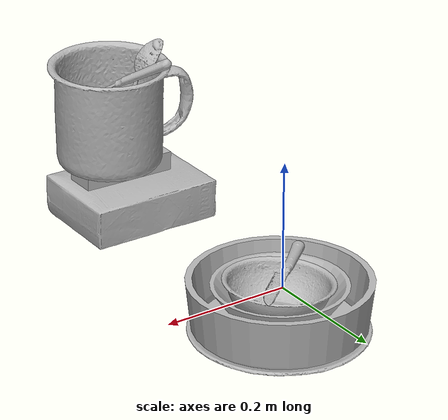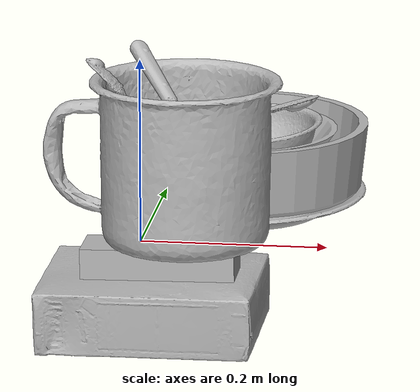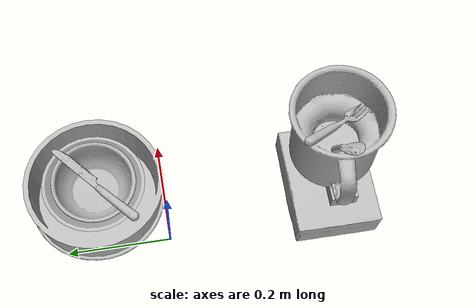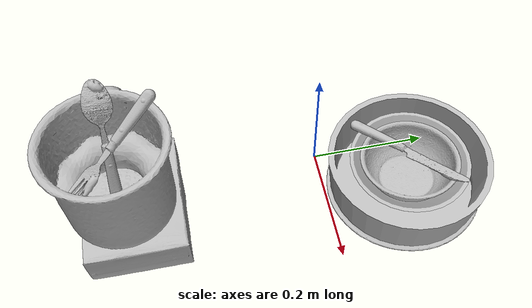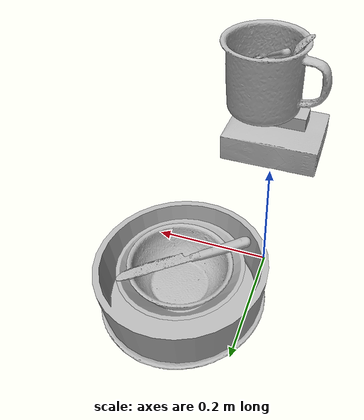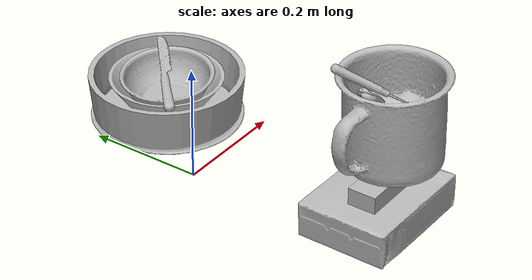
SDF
<?xml version="1.0" ?>
<sdf version="1.4">

  <world name="default">

    <light name="light1" type="point">

      <pose>0 0 1 0 0 0</pose>

      <diffuse>3 3 3 1</diffuse>

      <specular>3 3 3 1</specular>

    </light>

    <light name="light2" type="point">

      <pose>0 0.5 2 0 0 0</pose>

      <diffuse>1 1 1 1</diffuse>

      <specular>1 1 1 1</specular>

    </light>

    <light name="light3" type="point">

      <pose>0 0.5 2 0 0 0</pose>

      <diffuse>3 3 3 1</diffuse>

      <specular>3 3 3 1</specular>

    </light>

    <scene>

      <ambient>0.7 0.7 0.7</ambient>

    </scene>

    <model name="plate1">

      <link name="link_plate1">

        <collision name="default">

          <geometry>

            <mesh>

              <uri>model://plate/collision_meshes/collision.obj</uri>

              <scale>1.0 1.0 1.0</scale>

            </mesh>

          </geometry>

          <surface>

            <friction>

              <ode>

                <mu>0.5</mu>

                <mu2>0.5</mu2>

              </ode>

            </friction>

          </surface>

        </collision>

        <visual name="default">

          <geometry>

            <mesh>

              <uri>model://plate/visual_meshes/visual.dae</uri>

              <scale>1.0 1.0 1.0</scale>

            </mesh>

          </geometry>

        </visual>

        <inertial>

          <mass>0.2627958059310913</mass>

          <pose>-0.0006044646725058556 0.00027825895813293755 -0.0010561998933553696 0.0022187866930069794 -0.0032254842153956703 0.4526099982878722</pose>

          <inertia>

            <ixx>0.0012293643</ixx>

            <iyy>0.0012176059</iyy>

            <izz>0.0024044532</izz>

            <ixy>0</ixy>

            <ixz>0</ixz>

            <iyz>0</iyz>

          </inertia>

        </inertial>

      </link>

      <pose>0.09994655847549438 0.12999475002288818 0.013737192377448082 -1.8964748812831525e-05 -5.37050631164338e-05 -0.00029494472107933757</pose>

    </model>

    <model name="plate2">

      <link name="link_plate2">

        <collision name="default">

          <geometry>

            <mesh>

              <uri>model://pan_tefal/collision_meshes/collision.obj</uri>

              <scale>1.0 1.0 1.0</scale>

            </mesh>

          </geometry>

          <surface>

            <friction>

              <ode>

                <mu>0.5</mu>

                <mu2>0.5</mu2>

              </ode>

            </friction>

          </surface>

        </collision>

        <visual name="default">

          <geometry>

            <mesh>

              <uri>model://pan_tefal/visual_meshes/visual.dae</uri>

              <scale>1.0 1.0 1.0</scale>

            </mesh>

          </geometry>

        </visual>

        <inertial>

          <mass>1.5012701749801636</mass>

          <pose>-0.00018001999706029892 3.279017983004451e-05 -0.00851493701338768 0.0008190300793188327 -0.0003301349064117064 -0.3318640955526003</pose>

          <inertia>

            <ixx>0.010363197</ixx>

            <iyy>0.010430007</iyy>

            <izz>0.019076647</izz>

            <ixy>0</ixy>

            <ixz>0</ixz>

            <iyz>0</iyz>

          </inertia>

        </inertial>

      </link>

      <pose>0.09982559829950333 0.13003931939601898 0.06393395364284515 0.0012797042044948705 -0.0019563367806306386 0.0008728082526264354</pose>

    </model>

    <model name="bowl1">

      <link name="link_bowl1">

        <collision name="default">

          <geometry>

            <mesh>

              <uri>model://bowl_a/collision_meshes/collision.obj</uri>

              <scale>1.0 1.0 1.0</scale>

            </mesh>

          </geometry>

          <surface>

            <friction>

              <ode>

                <mu>0.5</mu>

                <mu2>0.5</mu2>

              </ode>

            </friction>

          </surface>

        </collision>

        <visual name="default">

          <geometry>

            <mesh>

              <uri>model://bowl_a/visual_meshes/visual.dae</uri>

              <scale>1.0 1.0 1.0</scale>

            </mesh>

          </geometry>

        </visual>

        <inertial>

          <mass>0.25230005383491516</mass>

          <pose>0.0002786753175314516 4.731153603643179e-05 -0.001376529224216938 -0.000980537182568925 -0.0010938202432478224 -0.19123453155183487</pose>

          <inertia>

            <ixx>0.00071831</ixx>

            <iyy>0.0007227198</iyy>

            <izz>0.0012775414</izz>

            <ixy>0</ixy>

            <ixz>0</ixz>

            <iyz>0</iyz>

          </inertia>

        </inertial>

      </link>

      <pose>0.10060806572437286 0.1310744732618332 0.0640677809715271 0.004139186369698193 -0.002763075250057129 -0.006373881404869026</pose>

    </model>

    <model name="bowl2">

      <link name="link_bowl2">

        <collision name="default">

          <geometry>

            <mesh>

              <uri>model://bowl/collision_meshes/collision.obj</uri>

              <scale>1.0 1.0 1.0</scale>

            </mesh>

          </geometry>

          <surface>

            <friction>

              <ode>

                <mu>0.5</mu>

                <mu2>0.5</mu2>

              </ode>

            </friction>

          </surface>

        </collision>

        <visual name="default">

          <geometry>

            <mesh>

              <uri>model://bowl/visual_meshes/visual.dae</uri>

              <scale>1.0 1.0 1.0</scale>

            </mesh>

          </geometry>

        </visual>

        <inertial>

          <mass>0.09131127595901489</mass>

          <pose>0.00020444947585929185 -0.0010302107548341155 -0.0008042654953896999 -0.01576413996306862 0.014546728377416086 0.7140363947853973</pose>

          <inertia>

            <ixx>0.00020974927</ixx>

            <iyy>0.00020506265</iyy>

            <izz>0.00035287044</izz>

            <ixy>0</ixy>

            <ixz>0</ixz>

            <iyz>0</iyz>

          </inertia>

        </inertial>

      </link>

      <pose>0.10297710448503494 0.13036854565143585 0.0732540488243103 0.020873271166305822 -0.07380807851850675 -0.03476412837430486</pose>

    </model>

    <model name="silverware1">

      <link name="link_silverware1">

        <collision name="default">

          <geometry>

            <mesh>

              <uri>model://knife/collision_meshes/collision.obj</uri>

              <scale>1.0 1.0 1.0</scale>

            </mesh>

          </geometry>

          <surface>

            <friction>

              <ode>

                <mu>0.5</mu>

                <mu2>0.5</mu2>

              </ode>

            </friction>

          </surface>

        </collision>

        <visual name="default">

          <geometry>

            <mesh>

              <uri>model://knife/visual_meshes/visual.dae</uri>

              <scale>1.0 1.0 1.0</scale>

            </mesh>

          </geometry>

        </visual>

        <inertial>

          <mass>0.033491987735033035</mass>

          <pose>-0.023785259574651718 0.00152751209679991 5.062024501967244e-05 0.07305195921562309 0.017248415702697233 -0.007409822782391368</pose>

          <inertia>

            <ixx>9.5063825e-07</ixx>

            <iyy>0.00012867076</iyy>

            <izz>0.00012897696</izz>

            <ixy>0</ixy>

            <ixz>0</ixz>

            <iyz>0</iyz>

          </inertia>

        </inertial>

      </link>

      <pose>0.09315893799066544 0.1263696849346161 0.10643904656171799 -0.14179147003510656 -0.07044320274756541 0.7263532938954272</pose>

    </model>

    <model name="box1">

      <link name="link_box1">

        <collision name="default">

          <geometry>

            <mesh>

              <uri>model://cracker_box/collision_meshes/collision.obj</uri>

              <scale>1.0 1.0 1.0</scale>

            </mesh>

          </geometry>

          <surface>

            <friction>

              <ode>

                <mu>0.5</mu>

                <mu2>0.5</mu2>

              </ode>

            </friction>

          </surface>

        </collision>

        <visual name="default">

          <geometry>

            <mesh>

              <uri>model://cracker_box/visual_meshes/visual.dae</uri>

              <scale>1.0 1.0 1.0</scale>

            </mesh>

          </geometry>

        </visual>

        <inertial>

          <mass>3.401942253112793</mass>

          <pose>0.0009464150061830878 0.00025434247800149024 -0.001702953246422112 -0.00031620765582640923 -0.011106486806186075 0.0025467954673401043</pose>

          <inertia>

            <ixx>0.008653021</ixx>

            <iyy>0.014287839</iyy>

            <izz>0.020390058</izz>

            <ixy>0</ixy>

            <ixz>0</ixz>

            <iyz>0</iyz>

          </inertia>

        </inertial>

      </link>

      <pose>0.059562455862760544 -0.32000622153282166 0.035532813519239426 3.137602525628845 -0.01637159674240883 -0.00037850492653239236</pose>

    </model>

    <model name="box2">

      <link name="link_box2">

        <collision name="default">

          <geometry>

            <mesh>

              <uri>model://jenga/collision_meshes/collision.obj</uri>

              <scale>1.0 1.0 1.0</scale>

            </mesh>

          </geometry>

          <surface>

            <friction>

              <ode>

                <mu>0.5</mu>

                <mu2>0.5</mu2>

              </ode>

            </friction>

          </surface>

        </collision>

        <visual name="default">

          <geometry>

            <mesh>

              <uri>model://jenga/visual_meshes/visual.dae</uri>

              <scale>1.0 1.0 1.0</scale>

            </mesh>

          </geometry>

        </visual>

        <inertial>

          <mass>0.15917322039604187</mass>

          <pose>-2.502856091268768e-07 -0.00010250010382151231 -4.0923405322246253e-05 0.0 -7.34215461761844e-07 0.0</pose>

          <inertia>

            <ixx>4.4047094e-05</ixx>

            <iyy>0.0002984619</iyy>

            <izz>0.00031863348</izz>

            <ixy>0</ixy>

            <ixz>0</ixz>

            <iyz>0</iyz>

          </inertia>

        </inertial>

      </link>

      <pose>0.06848328560590744 -0.332438588142395 0.08718373626470566 -0.0023323528486801286 -0.017177915611826498 -0.000746988789350429</pose>

    </model>

    <model name="cup1">

      <link name="link_cup1">

        <collision name="default">

          <geometry>

            <mesh>

              <uri>model://mug/collision_meshes/collision.obj</uri>

              <scale>2.0 2.0 2.0</scale>

            </mesh>

          </geometry>

          <surface>

            <friction>

              <ode>

                <mu>0.5</mu>

                <mu2>0.5</mu2>

              </ode>

            </friction>

          </surface>

        </collision>

        <visual name="default">

          <geometry>

            <mesh>

              <uri>model://mug/visual_meshes/visual.dae</uri>

              <scale>2.0 2.0 2.0</scale>

            </mesh>

          </geometry>

        </visual>

        <inertial>

          <mass>1.8939067125320435</mass>

          <pose>0.019143342971801758 0.0016286505851894617 -0.02189466543495655 -0.12983139039190478 0.08737723243087561 0.05507286357129759</pose>

          <inertia>

            <ixx>0.0075250226</ixx>

            <iyy>0.008405008</iyy>

            <izz>0.009720505</izz>

            <ixy>0</ixy>

            <ixz>0</ixz>

            <iyz>0</iyz>

          </inertia>

        </inertial>

      </link>

      <pose>0.06896759569644928 -0.323712557554245 0.18374912440776825 -0.020811560129200525 -0.0017600770479020734 -0.11905942564659182</pose>

    </model>

    <model name="silverware2">

      <link name="link_silverware2">

        <collision name="default">

          <geometry>

            <mesh>

              <uri>model://fork/collision_meshes/collision.obj</uri>

              <scale>1.0 1.0 1.0</scale>

            </mesh>

          </geometry>

          <surface>

            <friction>

              <ode>

                <mu>0.5</mu>

                <mu2>0.5</mu2>

              </ode>

            </friction>

          </surface>

        </collision>

        <visual name="default">

          <geometry>

            <mesh>

              <uri>model://fork/visual_meshes/visual.dae</uri>

              <scale>1.0 1.0 1.0</scale>

            </mesh>

          </geometry>

        </visual>

        <inertial>

          <mass>0.01107261423021555</mass>

          <pose>-0.02957005240023136 0.00046588238910771906 0.0003218861820641905 -0.01355183639158028 -0.010977839693189282 0.014453902572364752</pose>

          <inertia>

            <ixx>3.8815773e-07</ixx>

            <iyy>2.8907412e-05</iyy>

            <izz>2.9081024e-05</izz>

            <ixy>0</ixy>

            <ixz>0</ixz>

            <iyz>0</iyz>

          </inertia>

        </inertial>

      </link>

      <pose>0.08156593888998032 -0.31661364436149597 0.2319439947605133 -0.1218420794007134 0.5130799182263286 -0.9704719731863752</pose>

    </model>

    <model name="silverware3">

      <link name="link_silverware3">

        <collision name="default">

          <geometry>

            <mesh>

              <uri>model://spoon/collision_meshes/collision.obj</uri>

              <scale>1.0 1.0 1.0</scale>

            </mesh>

          </geometry>

          <surface>

            <friction>

              <ode>

                <mu>0.5</mu>

                <mu2>0.5</mu2>

              </ode>

            </friction>

          </surface>

        </collision>

        <visual name="default">

          <geometry>

            <mesh>

              <uri>model://spoon/visual_meshes/visual.dae</uri>

              <scale>1.0 1.0 1.0</scale>

            </mesh>

          </geometry>

        </visual>

        <inertial>

          <mass>0.03720218688249588</mass>

          <pose>-0.005526323337107897 -0.00160341733135283 -0.0007271655485965312 0.035216710753312216 -0.03906584126265578 0.006150608185168733</pose>

          <inertia>

            <ixx>2.0692462e-06</ixx>

            <iyy>0.00014155307</iyy>

            <izz>0.00014257352</izz>

            <ixy>0</ixy>

            <ixz>0</ixz>

            <iyz>0</iyz>

          </inertia>

        </inertial>

      </link>

      <pose>0.04932431876659393 -0.32669511437416077 0.2002379596233368 -2.925839433546212 -1.1592657071094699 3.0229074117007833</pose>

    </model>

  </world>

</sdf>
